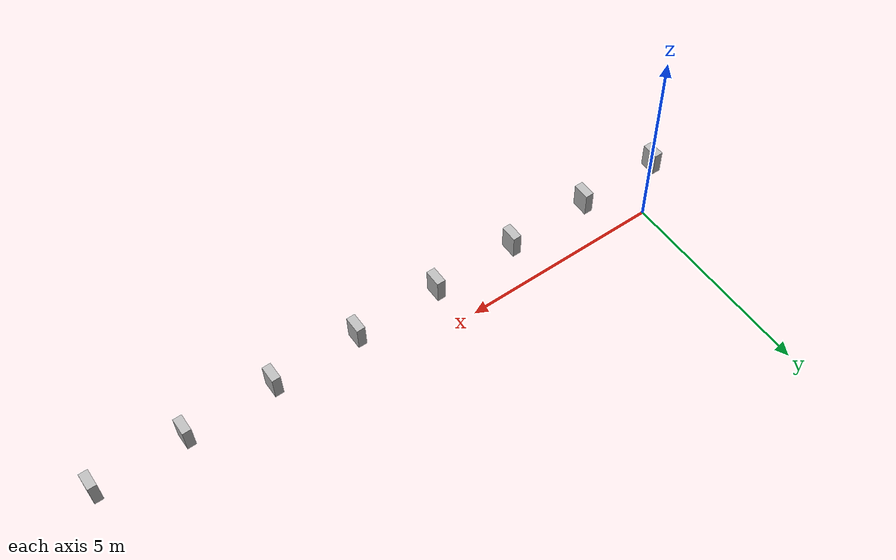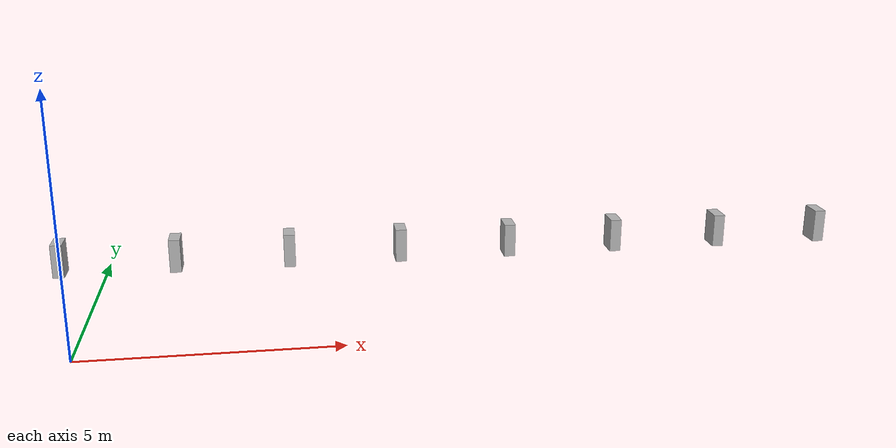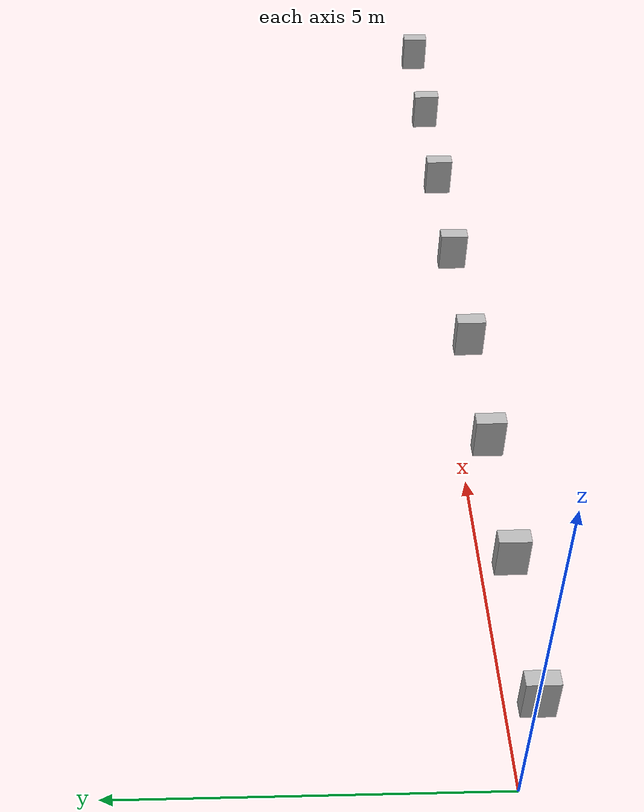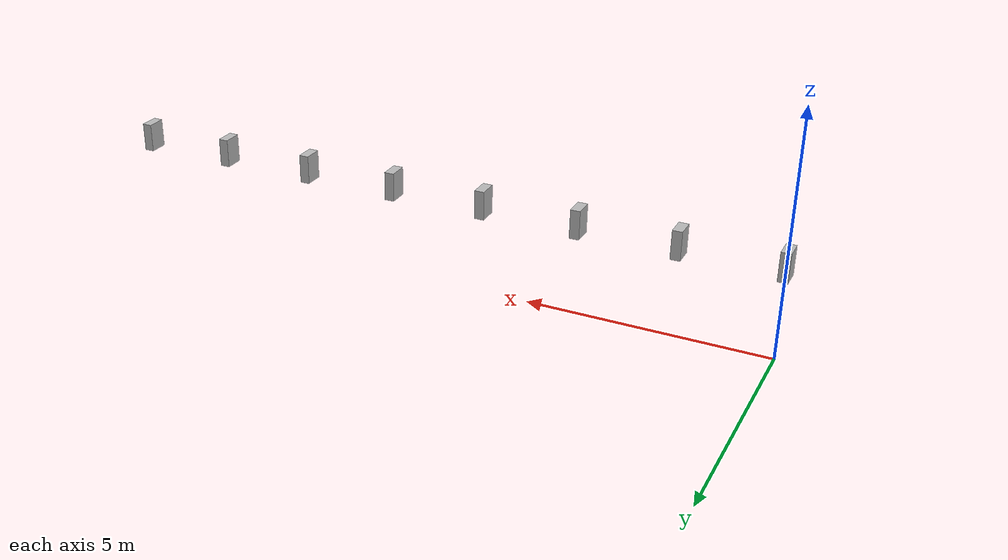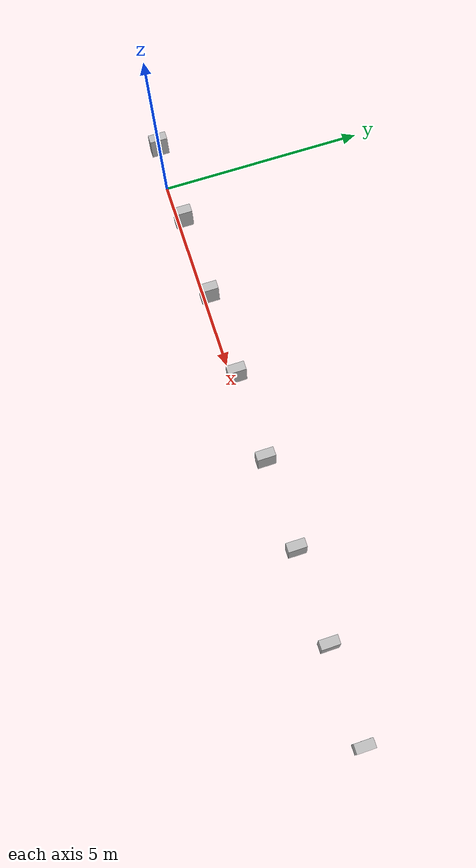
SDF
<?xml version="1.0" ?>
<sdf version="1.4">
    <world name="default">
        <include>
            <uri>model://sun</uri>
        </include>
        <physics type="rtql8">
            <gravity>0 0 -10.0</gravity>
            <max_step_size>0.001</max_step_size>
        </physics>
        <!-- 25.3kg total mass -->
        <model name="pendulum1">
            <pose>0 0 2 0 0 0</pose>
            <link name="link1">
                <pose>0 0 0 0 0 0</pose>
                <inertial>
                    <inertia>
                        <ixx>1</ixx>
                        <ixy>0</ixy>
                        <ixz>0</ixz>
                        <iyy>1</iyy>
                        <iyz>0</iyz>
                        <izz>1</izz>
                    </inertia>
                    <mass>1.0</mass>
                </inertial>
                <visual name="visual1">
                    <pose>0 0 0 0 0 0</pose>
                    <geometry>
                        <box>
                            <size>0.2 0.4 0.6</size>
                        </box>
                    </geometry>
                    <material>
                        <script>Gazebo/WoodPallet</script>
                    </material>
                </visual>
            </link>
            <joint name="joint01" type="revolute">
                <pose>0 -0.5 0 0 0 0</pose>
                <axis>
                    <xyz>1 0 0</xyz>
                </axis>
                <parent>
                    <link_name>world</link_name>
                </parent>
                <child>
                    <link_name>link1</link_name>
                </child>
            </joint>
        </model>
        <model name="pendulum2">
            <pose>2 0 2 0 0 0</pose>
            <link name="link1">
                <pose>0 0 0 0 0 0</pose>
                <inertial>
                    <inertia>
                        <ixx>1</ixx>
                        <ixy>0</ixy>
                        <ixz>0</ixz>
                        <iyy>1</iyy>
                        <iyz>0</iyz>
                        <izz>1</izz>
                    </inertia>
                    <mass>1.0</mass>
                </inertial>
                <visual name="visual1">
                    <pose>0 0 0 0 0 0</pose>
                    <geometry>
                        <box>
                            <size>0.2 0.4 0.6</size>
                        </box>
                    </geometry>
                    <material>
                        <script>Gazebo/WoodPallet</script>
                    </material>
                </visual>
            </link>
            <joint name="joint01" type="revolute">
                <pose>0 -0.5 0 0 0 0</pose>
                <axis>
                    <xyz>1 0 0</xyz>
                </axis>
                <parent>
                    <link_name>world</link_name>
                </parent>
                <child>
                    <link_name>link1</link_name>
                </child>
            </joint>
        </model>
        <model name="pendulum3">
            <pose>4 0 2 0 0 0</pose>
            <link name="link1">
                <pose>0 0 0 0 0 0</pose>
                <inertial>
                    <inertia>
                        <ixx>1</ixx>
                        <ixy>0</ixy>
                        <ixz>0</ixz>
                        <iyy>1</iyy>
                        <iyz>0</iyz>
                        <izz>1</izz>
                    </inertia>
                    <mass>1.0</mass>
                </inertial>
                <visual name="visual1">
                    <pose>0 0 0 0 0 0</pose>
                    <geometry>
                        <box>
                            <size>0.2 0.4 0.6</size>
                        </box>
                    </geometry>
                    <material>
                        <script>Gazebo/WoodPallet</script>
                    </material>
                </visual>
            </link>
            <joint name="joint01" type="revolute">
                <pose>0 -0.5 0 0 0 0</pose>
                <axis>
                    <xyz>1 0 0</xyz>
                </axis>
                <parent>
                    <link_name>world</link_name>
                </parent>
                <child>
                    <link_name>link1</link_name>
                </child>
            </joint>
        </model>
        <model name="pendulum4">
            <pose>6 0 2 0 0 0</pose>
            <link name="link1">
                <pose>0 0 0 0 0 0</pose>
                <inertial>
                    <inertia>
                        <ixx>1</ixx>
                        <ixy>0</ixy>
                        <ixz>0</ixz>
                        <iyy>1</iyy>
                        <iyz>0</iyz>
                        <izz>1</izz>
                    </inertia>
                    <mass>1.0</mass>
                </inertial>
                <visual name="visual1">
                    <pose>0 0 0 0 0 0</pose>
                    <geometry>
                        <box>
                            <size>0.2 0.4 0.6</size>
                        </box>
                    </geometry>
                    <material>
                        <script>Gazebo/WoodPallet</script>
                    </material>
                </visual>
            </link>
            <joint name="joint01" type="revolute">
                <pose>0 -0.5 0 0 0 0</pose>
                <axis>
                    <xyz>1 0 0</xyz>
                </axis>
                <parent>
                    <link_name>world</link_name>
                </parent>
                <child>
                    <link_name>link1</link_name>
                </child>
            </joint>
        </model>
        <model name="pendulum5">
            <pose>8 0 2 0 0 0</pose>
            <link name="link1">
                <pose>0 0 0 0 0 0</pose>
                <inertial>
                    <inertia>
                        <ixx>1</ixx>
                        <ixy>0</ixy>
                        <ixz>0</ixz>
                        <iyy>1</iyy>
                        <iyz>0</iyz>
                        <izz>1</izz>
                    </inertia>
                    <mass>1.0</mass>
                </inertial>
                <visual name="visual1">
                    <pose>0 0 0 0 0 0</pose>
                    <geometry>
                        <box>
                            <size>0.2 0.4 0.6</size>
                        </box>
                    </geometry>
                    <material>
                        <script>Gazebo/WoodPallet</script>
                    </material>
                </visual>
            </link>
            <joint name="joint01" type="revolute">
                <pose>0 -0.5 0 0 0 0</pose>
                <axis>
                    <xyz>1 0 0</xyz>
                </axis>
                <parent>
                    <link_name>world</link_name>
                </parent>
                <child>
                    <link_name>link1</link_name>
                </child>
            </joint>
        </model>
        <model name="pendulum6">
            <pose>10 0 2 0 0 0</pose>
            <link name="link1">
                <pose>0 0 0 0 0 0</pose>
                <inertial>
                    <inertia>
                        <ixx>1</ixx>
                        <ixy>0</ixy>
                        <ixz>0</ixz>
                        <iyy>1</iyy>
                        <iyz>0</iyz>
                        <izz>1</izz>
                    </inertia>
                    <mass>1.0</mass>
                </inertial>
                <visual name="visual1">
                    <pose>0 0 0 0 0 0</pose>
                    <geometry>
                        <box>
                            <size>0.2 0.4 0.6</size>
                        </box>
                    </geometry>
                    <material>
                        <script>Gazebo/WoodPallet</script>
                    </material>
                </visual>
            </link>
            <joint name="joint01" type="revolute">
                <pose>0 -0.5 0 0 0 0</pose>
                <axis>
                    <xyz>1 0 0</xyz>
                </axis>
                <parent>
                    <link_name>world</link_name>
                </parent>
                <child>
                    <link_name>link1</link_name>
                </child>
            </joint>
        </model>
        <model name="pendulum7">
            <pose>12 0 2 0 0 0</pose>
            <link name="link1">
                <pose>0 0 0 0 0 0</pose>
                <inertial>
                    <inertia>
                        <ixx>1</ixx>
                        <ixy>0</ixy>
                        <ixz>0</ixz>
                        <iyy>1</iyy>
                        <iyz>0</iyz>
                        <izz>1</izz>
                    </inertia>
                    <mass>1.0</mass>
                </inertial>
                <visual name="visual1">
                    <pose>0 0 0 0 0 0</pose>
                    <geometry>
                        <box>
                            <size>0.2 0.4 0.6</size>
                        </box>
                    </geometry>
                    <material>
                        <script>Gazebo/WoodPallet</script>
                    </material>
                </visual>
            </link>
            <joint name="joint01" type="revolute">
                <pose>0 -0.5 0 0 0 0</pose>
                <axis>
                    <xyz>1 0 0</xyz>
                </axis>
                <parent>
                    <link_name>world</link_name>
                </parent>
                <child>
                    <link_name>link1</link_name>
                </child>
            </joint>
        </model>
        <model name="pendulum8">
            <pose>14 0 2 0 0 0</pose>
            <link name="link1">
                <pose>0 0 0 0 0 0</pose>
                <inertial>
                    <inertia>
                        <ixx>1</ixx>
                        <ixy>0</ixy>
                        <ixz>0</ixz>
                        <iyy>1</iyy>
                        <iyz>0</iyz>
                        <izz>1</izz>
                    </inertia>
                    <mass>1.0</mass>
                </inertial>
                <visual name="visual1">
                    <pose>0 0 0 0 0 0</pose>
                    <geometry>
                        <box>
                            <size>0.2 0.4 0.6</size>
                        </box>
                    </geometry>
                    <material>
                        <script>Gazebo/WoodPallet</script>
                    </material>
                </visual>
            </link>
            <joint name="joint01" type="revolute">
                <pose>0 -0.5 0 0 0 0</pose>
                <axis>
                    <xyz>1 0 0</xyz>
                </axis>
                <parent>
                    <link_name>world</link_name>
                </parent>
                <child>
                    <link_name>link1</link_name>
                </child>
            </joint>
        </model>
    </world>
</sdf>
